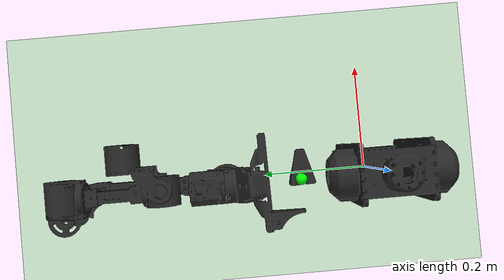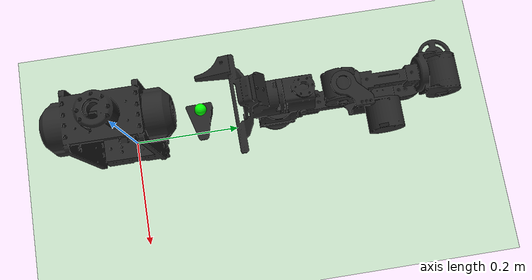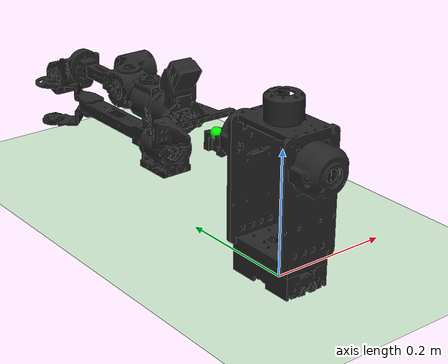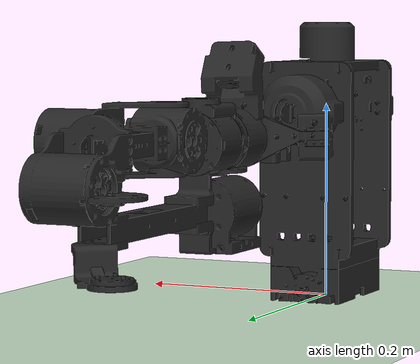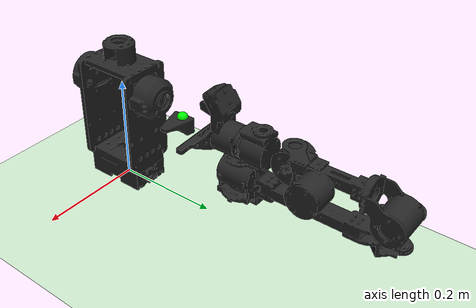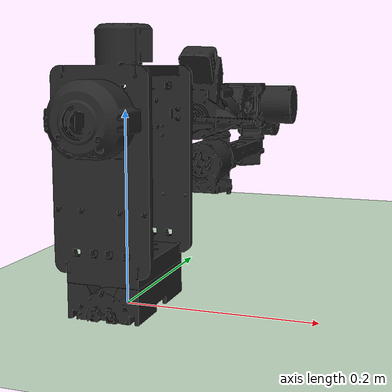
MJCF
<?xml version="1.0" encoding="utf-8"?>
<mujoco model="alicia_m_v1_2_follower_arx">
  <compiler angle="radian" meshdir="../../meshes/Alicia_M_v1_2/arx/"/>
  <asset>
    <mesh name="base_link" file="base_link.STL" content_type="model/stl"/>
    <mesh name="link1" file="link1.STL" content_type="model/stl"/>
    <mesh name="link2" file="link2.STL" content_type="model/stl"/>
    <mesh name="link3" file="link3.STL" content_type="model/stl"/>
    <mesh name="link4" file="link4.STL" content_type="model/stl"/>
    <mesh name="link5" file="link5.STL" content_type="model/stl"/>
    <mesh name="link6" file="link6.STL" content_type="model/stl"/>
    <mesh name="link7" file="link7.STL" content_type="model/stl"/>
    <mesh name="link8" file="link8.STL" content_type="model/stl"/>
    <texture builtin="gradient" height="100" rgb1=".4 .5 .6" rgb2="0 0 0" type="skybox" width="100"/>
    <texture builtin="checker" height="100" name="texplane" rgb1="1 1 1" rgb2=".8 .9 1" type="2d" width="100"/>
    <material name="MatPlane" reflectance="0.5" texrepeat="1 1" texture="texplane" texuniform="true"/>
    <material name="white" rgba="1 1 1 1" shininess="0.5" specular="0.1"/>
    <material name="black" rgba="0.15 0.15 0.15 1" shininess="0.2" specular="0.05"/>
    <material name="invisible" rgba="1 1 1 0" shininess="0" specular="0"/>
  </asset>
  <worldbody>
    <geom conaffinity="1" condim="3" contype="1" friction="1 .1 .1" group="2" material="MatPlane" name="floor" pos="0 0 0" rgba="0.8 0.9 0.8 1" size="10 10 0.125" type="plane" />
    <light castshadow="false" cutoff="100" diffuse="1 1 1" dir="-0 0 -1.3" directional="true" exponent="1" pos="0 0 1.3" specular=".1 .1 .1" />
    <body name="base_link" pos="0 0 0">
      <inertial pos="-0.00398221 0.280415 0.00882744" mass="1.30948" diaginertia="0.0019724 0.0036059 0.00476024" quat="1 0 0 0"/>
      <geom type="mesh" contype="0" conaffinity="0" group="1" density="0" rgba="0.15 0.15 0.15 1" mesh="base_link"/>
      <geom type="mesh" rgba="0.15 0.15 0.15 1" mesh="base_link"/>
      <body name="link1" pos="-0.00398122 0.273741 0.072814" quat="1 0 0 0">
        <inertial pos="-0.000703329 -0.000725762 0.0322654" mass="0.243059" diaginertia="0.000108903 8.60971e-05 9.853e-05" quat="1 0 0 0"/>
        <joint name="joint1" pos="0 0 0" axis="0 0 1" range="-2.7475 2.7475" actuatorfrcrange="-5 5"/>
        <geom type="mesh" contype="0" conaffinity="0" group="1" density="0" rgba="0.15 0.15 0.15 1" mesh="link1"/>
        <geom type="mesh" rgba="0.15 0.15 0.15 1" mesh="link1"/>
        <body name="link2" pos="0.00398122 0 0.0425" quat="0.5 0.5 -0.5 -0.5">
          <inertial pos="-0.149854 0.00662694 0.00573138" mass="0.370826" diaginertia="0.000114897 0.000559582 0.000607782" quat="1 0 0 0"/>
          <joint name="joint2" pos="0 0 0" axis="0 0 1" range="-3.14 0" actuatorfrcrange="-5 5"/>
          <geom type="mesh" contype="0" conaffinity="0" group="1" density="0" rgba="0.15 0.15 0.15 1" mesh="link2"/>
          <geom type="mesh" rgba="0.15 0.15 0.15 1" mesh="link2"/>
          <body name="link3" pos="-0.281841 0.0404241 0">
            <inertial pos="0.107541 0.0219925 0.00296775" mass="0.684309" diaginertia="0.000203996 0.000236861 0.000284282" quat="1 0 0 0"/>
            <joint name="joint3" pos="0 0 0" axis="0 0 -1" range="-3.14 0" actuatorfrcrange="-5 5"/>
            <geom type="mesh" contype="0" conaffinity="0" group="1" density="0" rgba="0.15 0.15 0.15 1" mesh="link3"/>
            <geom type="mesh" rgba="0.15 0.15 0.15 1" mesh="link3"/>
            <body name="link4" pos="0.178416 0.0285459 0" quat="0 0 -1 0">
              <inertial pos="-0.059499 0.0531016 -0.00407702" mass="0.317091" diaginertia="0.000108082 0.000145364 0.000105388" quat="1 0 0 0"/>
              <joint name="joint4" pos="0 0 0" axis="0 0 -1" range="-1.57 1.57" actuatorfrcrange="-5 5"/>
              <geom type="mesh" contype="0" conaffinity="0" group="1" density="0" rgba="0.15 0.15 0.15 1" mesh="link4"/>
              <geom type="mesh" rgba="0.15 0.15 0.15 1" mesh="link4"/>
              <body name="link5" pos="-0.063 0.034 -0.00365622" quat="0.5 0.5 -0.5 0.5">
                <inertial pos="9.96369e-05 0.0108191 0.0363896" mass="0.394074" diaginertia="0.00010909 0.000150107 0.000114049" quat="1 0 0 0"/>
                <joint name="joint5" pos="0 0 0" axis="0 0 1" range="-1.57 1.57" actuatorfrcrange="-5 5"/>
                <geom type="mesh" contype="0" conaffinity="0" group="1" density="0" rgba="0.15 0.15 0.15 1" mesh="link5"/>
                <geom type="mesh" rgba="0.15 0.15 0.15 1" mesh="link5"/>
                <body name="link6" pos="0 0.029 0.0403039" quat="0.707089 -0.707092 0.00479027 -0.00479025">
                  <inertial pos="-5.70492e-05 0.0156211 0.0442832" mass="0.460841" diaginertia="0.0001207 0.000196189 0.000243305" quat="1 0 0 0"/>
                  <joint name="joint6" pos="0 0 0" axis="0 0 1" range="-2.791 2.791" actuatorfrcrange="-5 5"/>
                  <geom type="mesh" contype="0" conaffinity="0" group="1" density="0" rgba="0.15 0.15 0.15 1" mesh="link6"/>
                  <geom type="mesh" rgba="0.15 0.15 0.15 1" mesh="link6"/>
                  <body name="link7" pos="-0.05 0 0.1415" quat="0 0 -1 0">
                    <inertial pos="0.0102757 -0.000209221 0.0427086" mass="0.0249331" diaginertia="8.29805e-06 6.56578e-06 5.19698e-06" quat="1 0 0 0"/>
                    <joint name="left_finger" pos="0 0 0" axis="1 0 0" type="slide" range="-0.05 0" actuatorfrcrange="-5 5"/>
                    <geom type="mesh" contype="0" conaffinity="0" group="1" density="0" rgba="0.15 0.15 0.15 1" mesh="link7"/>
                    <geom type="mesh" rgba="0.15 0.15 0.15 1" mesh="link7"/>
                  </body>
                  <body name="link8" pos="0.05 0 0.1415" quat="1.16073e-14 0.999977 7.86337e-17 -0.00677435">
                    <inertial pos="0.0114291 -0.000209221 0.0424145" mass="0.0249331" diaginertia="8.22756e-06 6.56578e-06 5.26748e-06" quat="1 0 0 0"/>
                    <joint name="right_finger" pos="0 0 0" axis="-1 0 0" type="slide" range="0 0.05" actuatorfrcrange="-5 5"/>
                    <geom type="mesh" contype="0" conaffinity="0" group="1" density="0" rgba="0.15 0.15 0.15 1" mesh="link8"/>
                    <geom type="mesh" rgba="0.15 0.15 0.15 1" mesh="link8"/>
                  </body>
                  <body name="tool0" pos="0 0 0.14">
                    <inertial pos="0 0 0" quat="1 0 0 0" mass="0.001" diaginertia="1e-08 1e-08 1e-08"/>
                    <geom type="sphere" size="0.01" contype="0" conaffinity="0" group="1" density="0" rgba="0 1 0 1"/>
                    <site name="tool0_site" pos="0 0 0" size="0.01" type="sphere"/>
                  </body>
                </body>
              </body>
            </body>
          </body>
        </body>
      </body>
    </body>
  </worldbody>
  <contact>
    <exclude body1="base_link" body2="link1"/>
    <exclude body1="link1" body2="link2"/>
    <exclude body1="link2" body2="link3"/>
    <exclude body1="link3" body2="link4"/>
    <exclude body1="link4" body2="link5"/>
    <exclude body1="link5" body2="link6"/>
    <exclude body1="link6" body2="link7"/>
    <exclude body1="link6" body2="link8"/>
    <exclude body1="link7" body2="link8"/>
  </contact>
</mujoco>
